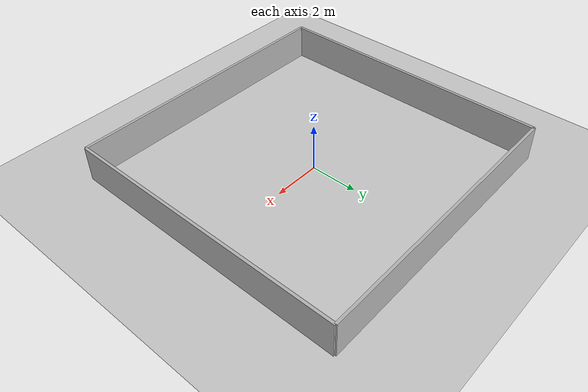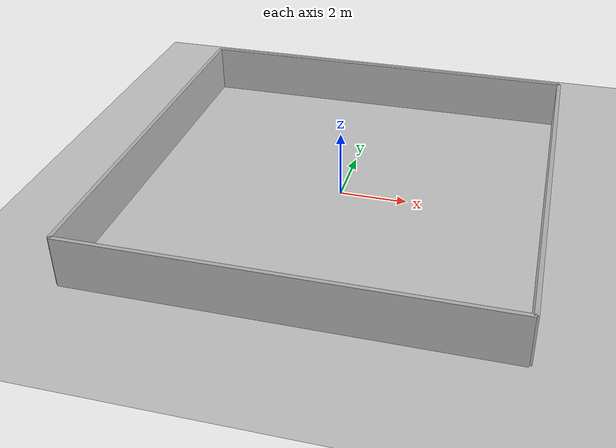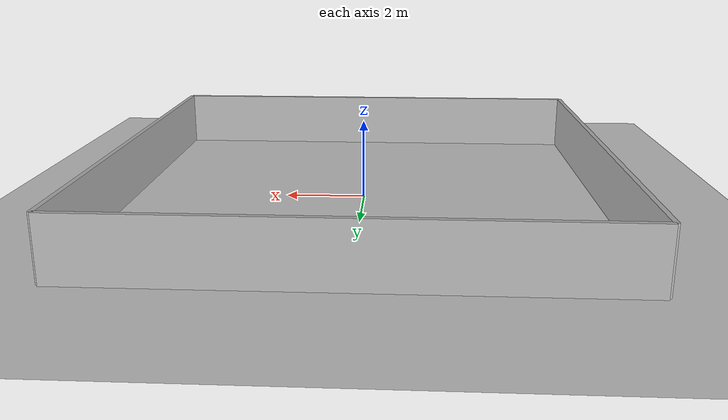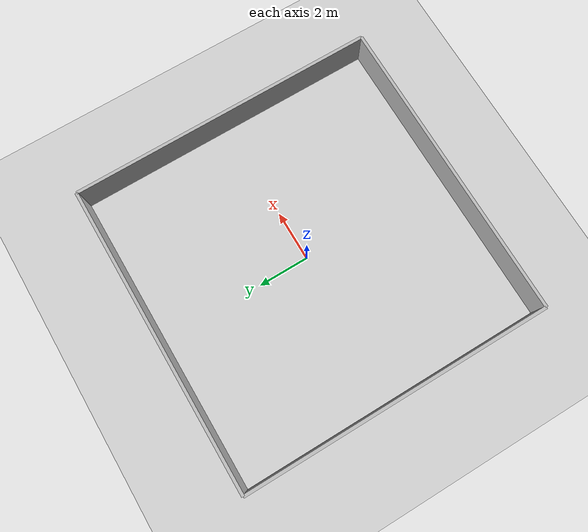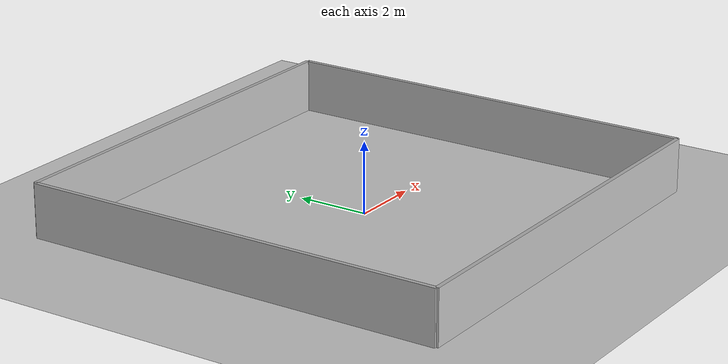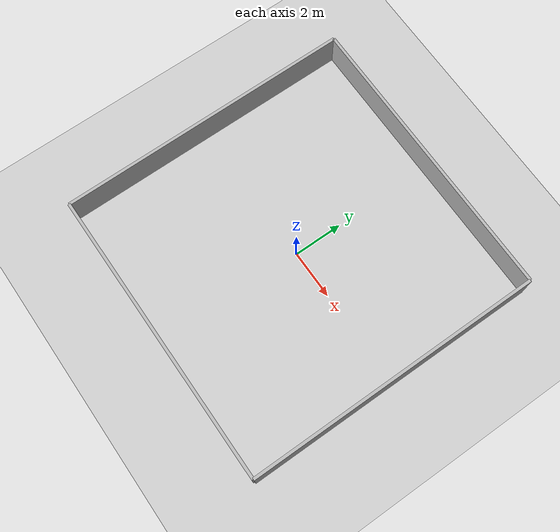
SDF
<?xml version="1.0"?>
<sdf version="1.6">
  <world name="scout_open_walled">
    <include>
      <uri>model://ground_plane</uri>
    </include>
    <include>
      <uri>model://sun</uri>
    </include>

    <physics type="ode">
      <max_step_size>0.01</max_step_size>
      <real_time_factor>1</real_time_factor>
      <real_time_update_rate>100</real_time_update_rate>
      <gravity>0 0 -9.8</gravity>
    </physics>

    <model name="wall_north">
      <static>true</static>
      <pose>0 6 0.75 0 0 0</pose>
      <link name="link">
        <collision name="collision">
          <geometry>
            <box>
              <size>12 0.12 1.5</size>
            </box>
          </geometry>
        </collision>
        <visual name="visual">
          <geometry>
            <box>
              <size>12 0.12 1.5</size>
            </box>
          </geometry>
          <material>
            <ambient>0.72 0.72 0.72 1</ambient>
            <diffuse>0.72 0.72 0.72 1</diffuse>
          </material>
        </visual>
      </link>
    </model>

    <model name="wall_south">
      <static>true</static>
      <pose>0 -6 0.75 0 0 0</pose>
      <link name="link">
        <collision name="collision">
          <geometry>
            <box>
              <size>12 0.12 1.5</size>
            </box>
          </geometry>
        </collision>
        <visual name="visual">
          <geometry>
            <box>
              <size>12 0.12 1.5</size>
            </box>
          </geometry>
          <material>
            <ambient>0.72 0.72 0.72 1</ambient>
            <diffuse>0.72 0.72 0.72 1</diffuse>
          </material>
        </visual>
      </link>
    </model>

    <model name="wall_east">
      <static>true</static>
      <pose>6 0 0.75 0 0 0</pose>
      <link name="link">
        <collision name="collision">
          <geometry>
            <box>
              <size>0.12 12 1.5</size>
            </box>
          </geometry>
        </collision>
        <visual name="visual">
          <geometry>
            <box>
              <size>0.12 12 1.5</size>
            </box>
          </geometry>
          <material>
            <ambient>0.72 0.72 0.72 1</ambient>
            <diffuse>0.72 0.72 0.72 1</diffuse>
          </material>
        </visual>
      </link>
    </model>

    <model name="wall_west">
      <static>true</static>
      <pose>-6 0 0.75 0 0 0</pose>
      <link name="link">
        <collision name="collision">
          <geometry>
            <box>
              <size>0.12 12 1.5</size>
            </box>
          </geometry>
        </collision>
        <visual name="visual">
          <geometry>
            <box>
              <size>0.12 12 1.5</size>
            </box>
          </geometry>
          <material>
            <ambient>0.72 0.72 0.72 1</ambient>
            <diffuse>0.72 0.72 0.72 1</diffuse>
          </material>
        </visual>
      </link>
    </model>
  </world>
</sdf>
